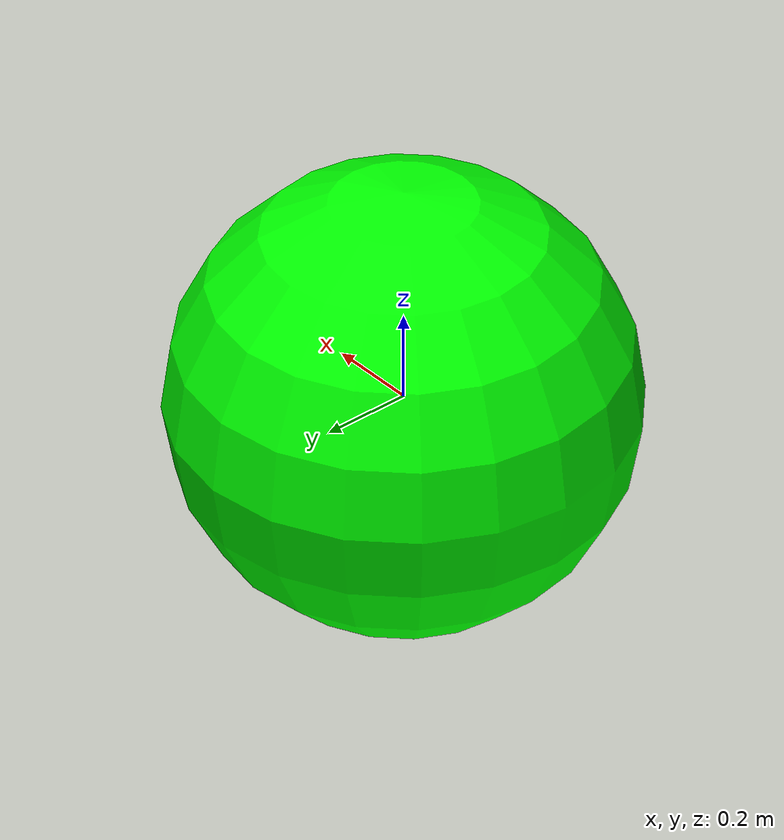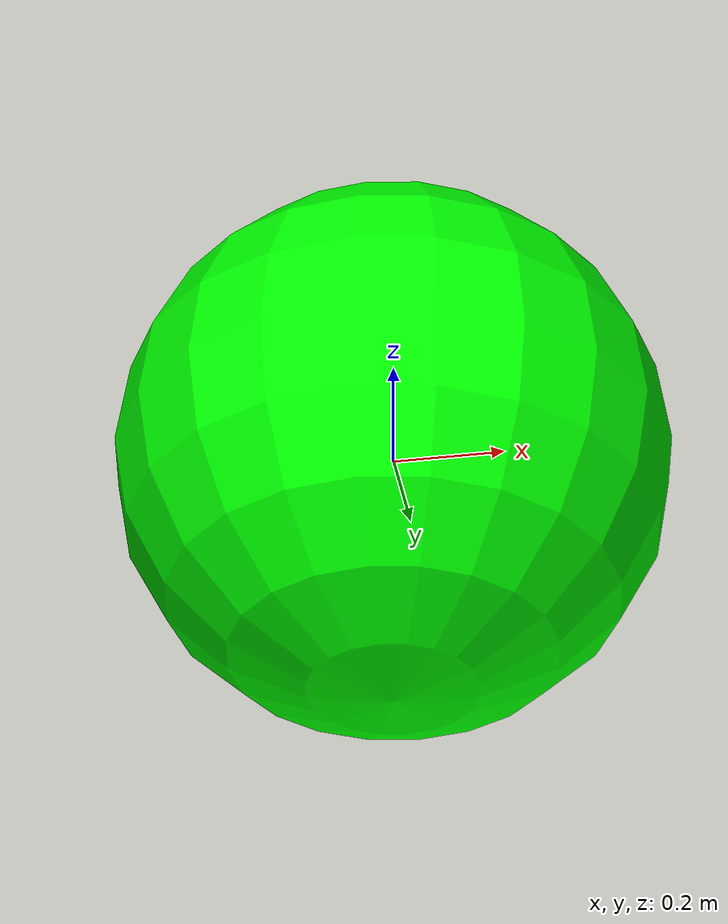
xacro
<?xml version="1.0"?>
<robot name="left_hand" xmlns:xacro="http://www.ros.org/wiki/xacro">
    <!-- World frame the palm moves around -->
    <link name="world">
        <visual>
            <origin xyz="0 0 0.0" />
            <geometry>
                <sphere radius="0.5"/>
            </geometry>
            <material name="">
                <color rgba="0 1 0 0" />
            </material>
        </visual>
    </link>

    <!-- World links that are needed to get a 6dof joint from world to palm -->
    <xacro:macro name="dummy_world" params="num">
        <link name="world_${num}">
            <inertial>
                <mass value="0.00001" />
                <inertia
                    ixx="${(1/12)*0.00001*(0.6**2 + 0.2**2)}"
                    ixy="0.0"
                    ixz="0.0"
                    iyy="${(1/12)*0.00001*(2.5**2 + 0.2**2)}"
                    iyz="0.0"
                    izz="${(1/12)*0.00001*(0.6**2 + 2.5**2)}"
                />
            </inertial>
            <visual>
                <origin xyz="0 0 0.0" />
                <geometry>
                    <box size="0.1 0.1 0.1"/>
                </geometry>
                <material name="">
                    <color rgba="0 1 0 0" />
                </material>
            </visual>
        </link>
    </xacro:macro>
    <xacro:dummy_world num="2"/>
    <xacro:dummy_world num="3"/>
    <xacro:dummy_world num="4"/>
    <xacro:dummy_world num="5"/>
    <xacro:dummy_world num="6"/>

    <!-- World joints from world to palm -->
    <joint name="palm_x" type="prismatic">
        <origin xyz="0.0 0.0 0.0" rpy="0.0 0.0 0.0"/>
        <parent link="world"/>
        <child link="world_2"/>
        <axis xyz="1.0 0.0 0.0"/>
        <limit effort="1000.0" lower="-15" upper="15" velocity="30"/>
        <dynamics damping="0.0" friction="0.0"/>
    </joint>
    <joint name="palm_y" type="prismatic">
        <origin xyz="0.0 0.0 0.0" rpy="0.0 0.0 0.0" />
        <parent link="world_2"/>
        <child link="world_3"/>
        <axis xyz="0.0 1.0 0.0"/>
        <limit effort="1000.0" lower="-15" upper="15" velocity="30"/>
        <dynamics damping="0.0" friction="0.0"/>
    </joint>
    <joint name="palm_z" type="prismatic">
        <origin xyz="0.0 0.0 0.0" rpy="0.0 0.0 0.0" />
        <parent link="world_3"/>
        <child link="world_4"/>
        <axis xyz="0.0 0.0 1.0"/>
        <limit effort="1000.0" lower="-15" upper="15" velocity="30"/>
        <dynamics damping="0.0" friction="0.0"/>
    </joint>

    <joint name="palm_roll" type="continuous">
        <origin xyz="0.0 0.0 0.0" rpy="0.0 0.0 0.0" />
        <parent link="world_4"/>
        <child link="world_5"/>
        <axis xyz="1.0 0.0 0.0"/>
        <limit effort="1000.0" lower="-15" upper="15" velocity="30"/>
        <dynamics damping="0.0" friction="0.0"/>
    </joint>
    <joint name="palm_pitch" type="continuous">
        <origin xyz="0.0 0.0 0.0" rpy="0.0 0.0 0.0" />
        <parent link="world_5"/>
        <child link="world_6"/>
        <axis xyz="0.0 1.0 0.0"/>
        <limit effort="1000.0" lower="-15" upper="15" velocity="30"/>
        <dynamics damping="0.0" friction="0.0"/>
    </joint>
    <joint name="palm_yaw" type="continuous">
        <origin xyz="0.0 0.0 0.0" rpy="0.0 0.0 0.0" />
        <parent link="world_6"/>
        <child link="palm"/>
        <axis xyz="0.0 0.0 1.0"/>
        <limit effort="1000.0" lower="-15" upper="15" velocity="30"/>
        <dynamics damping="0.0" friction="0.0"/>
    </joint>

    <!-- The palm -->
    <link name="palm">
        <inertial>
            <mass value="1" />
            <inertia
                ixx="${(1/12)*1*(0.6**2 + 0.2**2)}"
                ixy="0.0"
                ixz="0.0"
                iyy="${(1/12)*1*(2.5**2 + 0.2**2)}"
                iyz="0.0"
                izz="${(1/12)*1*(0.6**2 + 2.5**2)}"
            />
        </inertial>
        <visual>
            <origin xyz="0 0 -0.0127" />
            <geometry>
                <box size="0.0889 0.0889 0.0254" />
            </geometry>
            <material name="">
                <color rgba="0 1 0 1" />
            </material>
        </visual>
        <collision>
            <origin xyz="0 0 -0.0127" />
            <geometry>
                <box size="0.0889 0.0889 0.0254" />
            </geometry>
        </collision>
    </link>

    <!-- Macro for the fingers -->
    <xacro:macro name="finger" params="name length color">
        <link name="${name}">
            <inertial>
                <mass value="0.1" />
                <inertia
                    ixx="${(1/12)*0.1*(0.6**2 + 0.2**2)}"
                    ixy="0.0"
                    ixz="0.0"
                    iyy="${(1/12)*0.1*(2.5**2 + 0.2**2)}"
                    iyz="0.0"
                    izz="${(1/12)*0.1*(0.6**2 + 2.5**2)}"
                />
            </inertial>
            <visual>
                <origin xyz="${length/2} 0 0" />
                <geometry>
                    <box size="${length} 0.01905 0.01905"/>
                </geometry>
                <material name="">
                    <color rgba="${color}"/>
                </material>
            </visual>
            <collision name="${name}_collision">
                <origin xyz="${length/2} 0 0" />
                <geometry>
                    <box size="${length} 0.01905 0.01905"/>
                </geometry>
            </collision>
        </link>
    </xacro:macro>

    <xacro:macro name="finger_dumb" params="name length color">
        <link name="${name}">
            <inertial>
                <mass value="0.1" />
                <inertia
                    ixx="${(1/12)*0.1*(0.6**2 + 0.2**2)}"
                    ixy="0.0"
                    ixz="0.0"
                    iyy="${(1/12)*0.1*(2.5**2 + 0.2**2)}"
                    iyz="0.0"
                    izz="${(1/12)*0.1*(0.6**2 + 2.5**2)}"
                />
            </inertial>
            <visual>
                <origin xyz="${length/2} 0 0" />
                <geometry>
                    <box size="${length} 0.01905 0.01905"/>
                </geometry>
                <material name="">
                    <color rgba="${color}"/>
                </material>
            </visual>
        </link>
    </xacro:macro>

    <!-- Creating each finger -->
    <xacro:finger_dumb name="index_dumb" length="0.0001" color="0 0 0 0"/>
    <xacro:finger name="index_1" length="${0.0762/3}" color="1 0 0 1"/>
    <xacro:finger name="index_2" length="${0.0762/3}" color="0 1 0 1"/>
    <xacro:finger name="index_3" length="${0.0762/3}" color="0 0 1 1"/>
    <xacro:finger_dumb name="index_tip" length="0.0001" color="0 0 0 0"/>
    <xacro:finger_dumb name="middle_dumb" length="0.0001" color="0 0 0 0"/>
    <xacro:finger name="middle_1" length="${0.0889/3}" color="1 0 0 1"/>
    <xacro:finger name="middle_2" length="${0.0889/3}" color="0 1 0 1"/>
    <xacro:finger name="middle_3" length="${0.0889/3}" color="0 0 1 1"/>
    <xacro:finger_dumb name="middle_tip" length="0.0001" color="0 0 0 0"/>
    <xacro:finger_dumb name="ring_dumb" length="0.0001" color="0 0 0 0"/>
    <xacro:finger name="ring_1" length="${0.0762/3}" color="1 0 0 1"/>
    <xacro:finger name="ring_2" length="${0.0762/3}" color="0 1 0 1"/>
    <xacro:finger name="ring_3" length="${0.0762/3}" color="0 0 1 1"/>
    <xacro:finger_dumb name="ring_tip" length="0.0001" color="0 0 0 0"/>
    <xacro:finger_dumb name="pinky_dumb" length="0.0001" color="0 0 0 0"/>
    <xacro:finger name="pinky_1" length="${0.0635/3}" color="1 0 0 1"/>
    <xacro:finger name="pinky_2" length="${0.0635/3}" color="0 1 0 1"/>
    <xacro:finger name="pinky_3" length="${0.0635/3}" color="0 0 1 1"/>
    <xacro:finger_dumb name="pinky_tip" length="0.0001" color="0 0 0 0"/>
    <xacro:finger_dumb name="thumb_dumb" length="0.0001" color="0 0 0 0"/>
    <xacro:finger name="thumb_1" length="${0.0635/2}" color="1 0 0 1"/>
    <xacro:finger name="thumb_2" length="${0.0635/2}" color="0 1 0 1"/>
    <xacro:finger_dumb name="thumb_tip" length="0.0001" color="0 0 0 0"/>

    <!-- Finger joint macro -->
    <xacro:macro name="finger_joint" params="parent child length">
        <joint name="${parent}_${child}" type="continuous">
            <origin xyz="${length} 0.0 0" rpy="0.0 0.0 0.0" />
            <parent link="${parent}"/>
            <child link="${child}"/>
            <axis xyz="0.0 -1.0 0.0"/>
            <limit effort="1000.0" lower="-15" upper="15" velocity="30"/>
            <dynamics damping="0.0" friction="0.0"/>
        </joint>
    </xacro:macro>

    <!-- Fingertip joint macro -->
    <xacro:macro name="fingertip_joint" params="parent child length">
        <joint name="${parent}_${child}" type="fixed">
            <origin xyz="${length/2} 0.0 0.009525" rpy="0.0 0.0 0.0" />
            <parent link="${parent}"/>
            <child link="${child}"/>
        </joint>
    </xacro:macro>

    <!-- Thumb joints -->
    <joint name="palm_thumb_dumb" type="continuous">
        <origin xyz="0.0 0.04445 -0.009525" rpy="0.0 0.0 ${radians(90.0)}" />
        <axis xyz="0.0 0.0 1.0"/>
        <parent link="palm"/>
        <child link="thumb_dumb"/>
    </joint>

    <xacro:finger_joint parent="thumb_dumb" child="thumb_1" length="0.0"/>
    <xacro:finger_joint parent="thumb_1" child="thumb_2" length="${0.0635/2}"/>
    <xacro:fingertip_joint parent="thumb_2" child="thumb_tip" length="${0.0635/2}"/>

    <!-- Index finger joints -->
    <joint name="palm_index_dumb" type="continuous">
        <origin xyz="0.04445 0.03556 -0.009525" rpy="0.0 0.0 0.0" />
        <axis xyz="0.0 0.0 1.0"/>
        <parent link="palm"/>
        <child link="index_dumb"/>
    </joint>

    <xacro:finger_joint parent="index_dumb" child="index_1" length="0.0"/>
    <xacro:finger_joint parent="index_1" child="index_2" length="${0.0762/3}"/>
    <xacro:finger_joint parent="index_2" child="index_3" length="${0.0762/3}"/>
    <xacro:fingertip_joint parent="index_3" child="index_tip" length="${0.0762/3}"/>

    <!-- Middle finger joints -->
    <joint name="palm_middle_dumb" type="continuous">
        <origin xyz="0.04445 0.0120015 -0.009525" rpy="0.0 0.0 0.0" />
        <axis xyz="0.0 0.0 1.0"/>
        <parent link="palm"/>
        <child link="middle_dumb"/>
    </joint>

    <xacro:finger_joint parent="middle_dumb" child="middle_1" length="0.0"/>
    <xacro:finger_joint parent="middle_1" child="middle_2" length="${0.0889/3}"/>
    <xacro:finger_joint parent="middle_2" child="middle_3" length="${0.0889/3}"/>
    <xacro:fingertip_joint parent="middle_3" child="middle_tip" length="${0.0889/3}"/>

    <!-- Ring finger joints -->
    <joint name="palm_ring_dumb" type="continuous">
        <origin xyz="0.04445 -0.0120015 -0.009525" rpy="0.0 0.0 0.0" />
        <axis xyz="0.0 0.0 1.0"/>
        <parent link="palm"/>
        <child link="ring_dumb"/>
    </joint>

    <xacro:finger_joint parent="ring_dumb" child="ring_1" length="0.0"/>
    <xacro:finger_joint parent="ring_1" child="ring_2" length="${0.0762/3}"/>
    <xacro:finger_joint parent="ring_2" child="ring_3" length="${0.0762/3}"/>
    <xacro:fingertip_joint parent="ring_3" child="ring_tip" length="${0.0762/3}"/>

    <!-- Pinky finger joints -->
    <joint name="palm_pinky_dumb" type="continuous">
        <origin xyz="0.04445 -0.03556 -0.009525" rpy="0.0 0.0 0.0" />
        <axis xyz="0.0 0.0 1.0"/>
        <parent link="palm"/>
        <child link="pinky_dumb"/>
    </joint>

    <xacro:finger_joint parent="pinky_dumb" child="pinky_1" length="0.0"/>
    <xacro:finger_joint parent="pinky_1" child="pinky_2" length="${0.0635/3}"/>
    <xacro:finger_joint parent="pinky_2" child="pinky_3" length="${0.0635/3}"/>
    <xacro:fingertip_joint parent="pinky_3" child="pinky_tip" length="${0.0635/3}"/>

    <!-- Gazebo contact force objects -->
    <gazebo reference="thumb_2_thumb_tip">
        <provideFeedback>true</provideFeedback>
        <preserveFixedJoint>true</preserveFixedJoint>
        <sensor name="force_torque_sensor" type="force_torque">
        <pose>0 0 0 0 -0 0</pose>
        <topic>force_torque</topic>
        <update_rate>100</update_rate>
        <always_on>true</always_on>
        <visualize>true</visualize>
        <force_torque>
            <frame>sensor</frame>
            <measure_direction>parent_to_child</measure_direction>
        </force_torque>
        </sensor>
    </gazebo>

    <gazebo reference="index_3_index_tip">
        <provideFeedback>true</provideFeedback>
        <preserveFixedJoint>true</preserveFixedJoint>
        <sensor name="force_torque_sensor" type="force_torque">
        <pose>0 0 0 0 -0 0</pose>
        <topic>force_torque</topic>
        <update_rate>100</update_rate>
        <always_on>true</always_on>
        <visualize>true</visualize>
        <force_torque>
            <frame>sensor</frame>
            <measure_direction>parent_to_child</measure_direction>
        </force_torque>
        </sensor>
    </gazebo>

    <gazebo reference="middle_3_middle_tip">
        <provideFeedback>true</provideFeedback>
        <preserveFixedJoint>true</preserveFixedJoint>
        <sensor name="force_torque_sensor" type="force_torque">
        <pose>0 0 0 0 -0 0</pose>
        <topic>force_torque</topic>
        <update_rate>100</update_rate>
        <always_on>true</always_on>
        <visualize>true</visualize>
        <force_torque>
            <frame>sensor</frame>
            <measure_direction>parent_to_child</measure_direction>
        </force_torque>
        </sensor>
    </gazebo>

    <gazebo reference="ring_3_ring_tip">
        <provideFeedback>true</provideFeedback>
        <preserveFixedJoint>true</preserveFixedJoint>
        <sensor name="force_torque_sensor" type="force_torque">
        <pose>0 0 0 0 -0 0</pose>
        <topic>force_torque</topic>
        <update_rate>100</update_rate>
        <always_on>true</always_on>
        <visualize>true</visualize>
        <force_torque>
            <frame>sensor</frame>
            <measure_direction>parent_to_child</measure_direction>
        </force_torque>
        </sensor>
    </gazebo>

    <gazebo reference="pinky_3_pinky_tip">
        <provideFeedback>true</provideFeedback>
        <preserveFixedJoint>true</preserveFixedJoint>
        <sensor name="force_torque_sensor" type="force_torque">
        <pose>0 0 0 0 -0 0</pose>
        <topic>force_torque</topic>
        <update_rate>100</update_rate>
        <always_on>true</always_on>
        <visualize>true</visualize>
        <force_torque>
            <frame>sensor</frame>
            <measure_direction>parent_to_child</measure_direction>
        </force_torque>
        </sensor>
    </gazebo>

    <ros2_control name="GazeboSimSystem" type="system">
        <hardware>
            <plugin>gz_ros2_control/GazeboSimSystem</plugin>
        </hardware>
        <joint name="palm_x">
            <command_interface name="position">
                <param name="min">-15</param>
                <param name="max">15</param>
            </command_interface>
            <state_interface name="position">
                <param name="initial_value">0.0</param>
            </state_interface>
            <state_interface name="velocity"/>
            <state_interface name="effort"/>
        </joint>
        <joint name="palm_y">
            <command_interface name="position">
                <param name="min">-15</param>
                <param name="max">15</param>
            </command_interface>
            <state_interface name="position">
                <param name="initial_value">0.0</param>
            </state_interface>
            <state_interface name="velocity"/>
            <state_interface name="effort"/>
        </joint>
        <joint name="palm_z">
            <command_interface name="position">
                <param name="min">-15</param>
                <param name="max">15</param>
            </command_interface>
            <state_interface name="position">
                <param name="initial_value">0.0</param>
            </state_interface>
            <state_interface name="velocity"/>
            <state_interface name="effort"/>
        </joint>
        <joint name="palm_roll">
            <command_interface name="position">
                <param name="min">-15</param>
                <param name="max">15</param>
            </command_interface>
            <state_interface name="position">
                <param name="initial_value">0.0</param>
            </state_interface>
            <state_interface name="velocity"/>
            <state_interface name="effort"/>
        </joint>
        <joint name="palm_pitch">
            <command_interface name="position">
                <param name="min">-15</param>
                <param name="max">15</param>
            </command_interface>
            <state_interface name="position">
                <param name="initial_value">0.0</param>
            </state_interface>
            <state_interface name="velocity"/>
            <state_interface name="effort"/>
        </joint>
        <joint name="palm_yaw">
            <command_interface name="position">
                <param name="min">-15</param>
                <param name="max">15</param>
            </command_interface>
            <state_interface name="position">
                <param name="initial_value">0.0</param>
            </state_interface>
            <state_interface name="velocity"/>
            <state_interface name="effort"/>
        </joint>
        <joint name="palm_thumb_dumb">
            <command_interface name="position">
                <param name="min">-15</param>
                <param name="max">15</param>
            </command_interface>
            <state_interface name="position">
                <param name="initial_value">0.0</param>
            </state_interface>
            <state_interface name="velocity"/>
            <state_interface name="effort"/>
        </joint>
        <joint name="thumb_dumb_thumb_1">
            <command_interface name="position">
                <param name="min">-15</param>
                <param name="max">15</param>
            </command_interface>
            <state_interface name="position">
                <param name="initial_value">0.0</param>
            </state_interface>
            <state_interface name="velocity"/>
            <state_interface name="effort"/>
        </joint>
        <joint name="thumb_1_thumb_2">
            <command_interface name="position">
                <param name="min">-15</param>
                <param name="max">15</param>
            </command_interface>
            <state_interface name="position">
                <param name="initial_value">0.0</param>
            </state_interface>
            <state_interface name="velocity"/>
            <state_interface name="effort"/>
        </joint>
        <joint name="palm_index_dumb">
            <command_interface name="position">
                <param name="min">-15</param>
                <param name="max">15</param>
            </command_interface>
            <state_interface name="position">
                <param name="initial_value">0.0</param>
            </state_interface>
            <state_interface name="velocity"/>
            <state_interface name="effort"/>
        </joint>
        <joint name="index_dumb_index_1">
            <command_interface name="position">
                <param name="min">-15</param>
                <param name="max">15</param>
            </command_interface>
            <state_interface name="position">
                <param name="initial_value">0.0</param>
            </state_interface>
            <state_interface name="velocity"/>
            <state_interface name="effort"/>
        </joint>
        <joint name="index_1_index_2">
            <command_interface name="position">
                <param name="min">-15</param>
                <param name="max">15</param>
            </command_interface>
            <state_interface name="position">
                <param name="initial_value">0.0</param>
            </state_interface>
            <state_interface name="velocity"/>
            <state_interface name="effort"/>
        </joint>
        <joint name="index_2_index_3">
            <command_interface name="position">
                <param name="min">-15</param>
                <param name="max">15</param>
            </command_interface>
            <state_interface name="position">
                <param name="initial_value">0.0</param>
            </state_interface>
            <state_interface name="velocity"/>
            <state_interface name="effort"/>
        </joint>
        <joint name="palm_middle_dumb">
            <command_interface name="position">
                <param name="min">-15</param>
                <param name="max">15</param>
            </command_interface>
            <state_interface name="position">
                <param name="initial_value">0.0</param>
            </state_interface>
            <state_interface name="velocity"/>
            <state_interface name="effort"/>
        </joint>
        <joint name="middle_dumb_middle_1">
            <command_interface name="position">
                <param name="min">-15</param>
                <param name="max">15</param>
            </command_interface>
            <state_interface name="position">
                <param name="initial_value">0.0</param>
            </state_interface>
            <state_interface name="velocity"/>
            <state_interface name="effort"/>
        </joint>
        <joint name="middle_1_middle_2">
            <command_interface name="position">
                <param name="min">-15</param>
                <param name="max">15</param>
            </command_interface>
            <state_interface name="position">
                <param name="initial_value">0.0</param>
            </state_interface>
            <state_interface name="velocity"/>
            <state_interface name="effort"/>
        </joint>
        <joint name="middle_2_middle_3">
            <command_interface name="position">
                <param name="min">-15</param>
                <param name="max">15</param>
            </command_interface>
            <state_interface name="position">
                <param name="initial_value">0.0</param>
            </state_interface>
            <state_interface name="velocity"/>
            <state_interface name="effort"/>
        </joint>
        <joint name="palm_ring_dumb">
            <command_interface name="position">
                <param name="min">-15</param>
                <param name="max">15</param>
            </command_interface>
            <state_interface name="position">
                <param name="initial_value">0.0</param>
            </state_interface>
            <state_interface name="velocity"/>
            <state_interface name="effort"/>
        </joint>
        <joint name="ring_dumb_ring_1">
            <command_interface name="position">
                <param name="min">-15</param>
                <param name="max">15</param>
            </command_interface>
            <state_interface name="position">
                <param name="initial_value">0.0</param>
            </state_interface>
            <state_interface name="velocity"/>
            <state_interface name="effort"/>
        </joint>
        <joint name="ring_1_ring_2">
            <command_interface name="position">
                <param name="min">-15</param>
                <param name="max">15</param>
            </command_interface>
            <state_interface name="position">
                <param name="initial_value">0.0</param>
            </state_interface>
            <state_interface name="velocity"/>
            <state_interface name="effort"/>
        </joint>
        <joint name="ring_2_ring_3">
            <command_interface name="position">
                <param name="min">-15</param>
                <param name="max">15</param>
            </command_interface>
            <state_interface name="position">
                <param name="initial_value">0.0</param>
            </state_interface>
            <state_interface name="velocity"/>
            <state_interface name="effort"/>
        </joint>
        <joint name="palm_pinky_dumb">
            <command_interface name="position">
                <param name="min">-15</param>
                <param name="max">15</param>
            </command_interface>
            <state_interface name="position">
                <param name="initial_value">0.0</param>
            </state_interface>
            <state_interface name="velocity"/>
            <state_interface name="effort"/>
        </joint>
        <joint name="pinky_dumb_pinky_1">
            <command_interface name="position">
                <param name="min">-15</param>
                <param name="max">15</param>
            </command_interface>
            <state_interface name="position">
                <param name="initial_value">0.0</param>
            </state_interface>
            <state_interface name="velocity"/>
            <state_interface name="effort"/>
        </joint>
        <joint name="pinky_1_pinky_2">
            <command_interface name="position">
                <param name="min">-15</param>
                <param name="max">15</param>
            </command_interface>
            <state_interface name="position">
                <param name="initial_value">0.0</param>
            </state_interface>
            <state_interface name="velocity"/>
            <state_interface name="effort"/>
        </joint>
        <joint name="pinky_2_pinky_3">
            <command_interface name="position">
                <param name="min">-15</param>
                <param name="max">15</param>
            </command_interface>
            <state_interface name="position">
                <param name="initial_value">0.0</param>
            </state_interface>
            <state_interface name="velocity"/>
            <state_interface name="effort"/>
        </joint>
    </ros2_control>

    <gazebo>
        <plugin filename="gz_ros2_control-system" name="gz_ros2_control::GazeboSimROS2ControlPlugin">
            <parameters>$(find teleop_tasks)/config/left_hand_controller.yaml</parameters>
        </plugin>
    </gazebo>

</robot>
